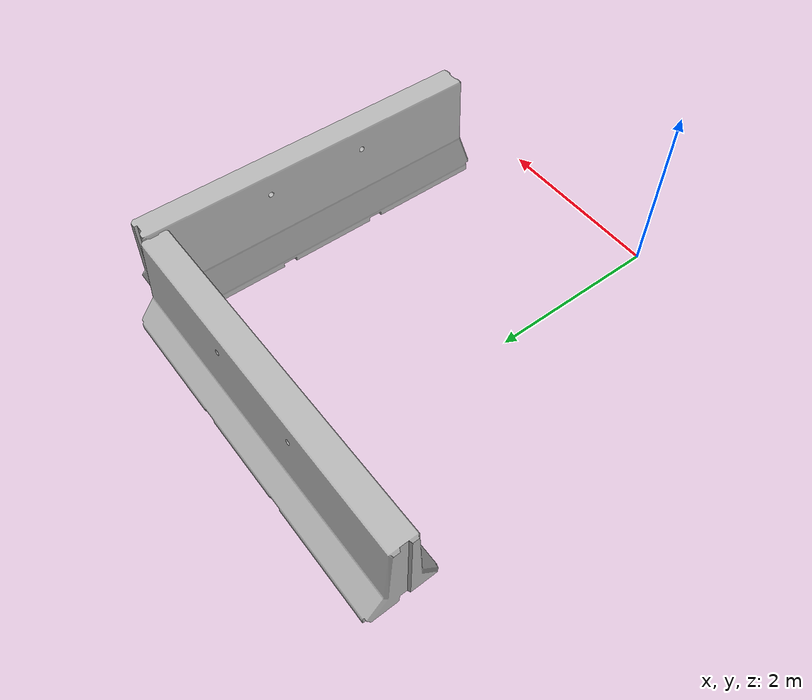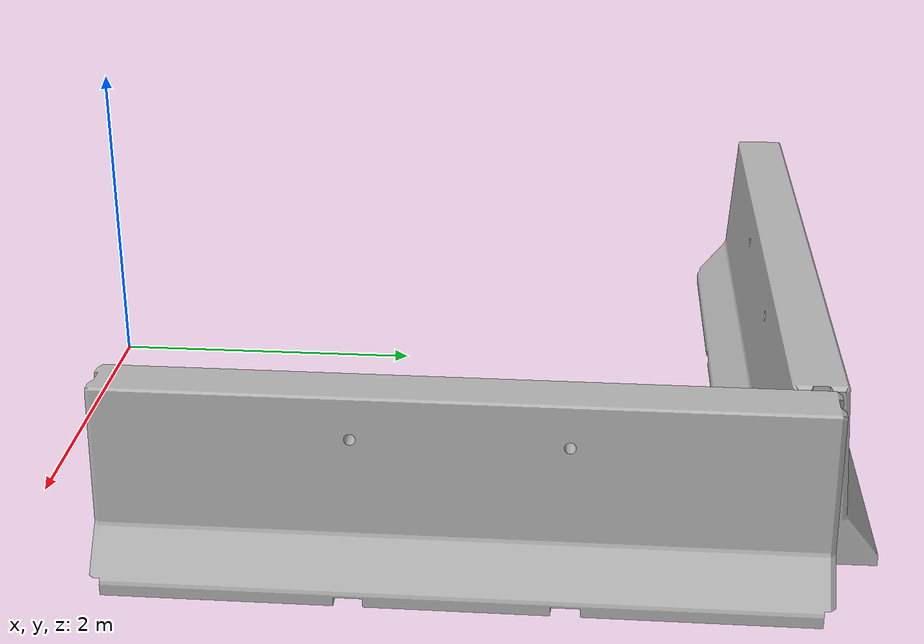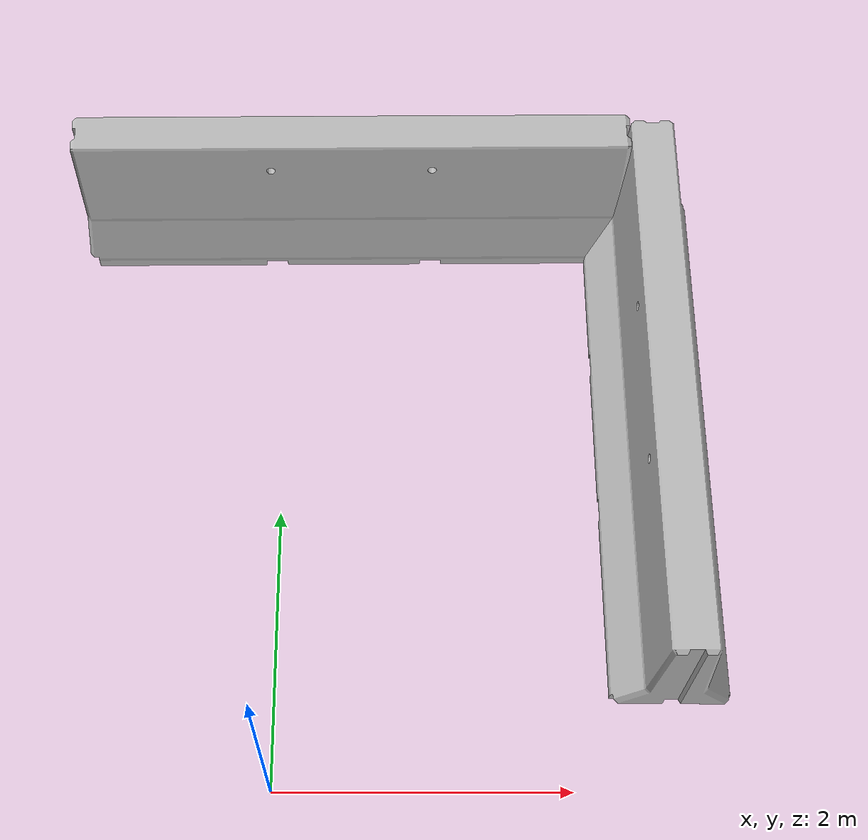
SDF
<sdf version="1.6">
 <world name="default">
  <model name="jersey_barrier_clone_0">
   <static>1</static>
   <link name="link">
    <visual name="visual">
     <geometry>
      <mesh><uri>model://jersey_barrier/meshes/jersey_barrier.dae</uri><scale>1 1 1</scale></mesh>
     </geometry>
    </visual>
    <collision name="upright">
     <pose>0 0 0.5715 0 -0 0</pose>
     <geometry><box><size>4.06542 0.3063 1.143</size></box></geometry>
    </collision>
    <collision name="base">
     <pose>0 0 0.032258 0 -0 0</pose>
     <geometry><box><size>4.06542 0.8107 0.064516</size></box></geometry>
    </collision>
    <collision name="base2">
     <pose>0 0 0.1 0 -0 0</pose>
     <geometry><box><size>4.06542 0.65 0.1</size></box></geometry>
    </collision>
    <collision name="base3">
     <pose>0 0 0.2 0 -0 0</pose>
     <geometry><box><size>4.06542 0.5 0.1</size></box></geometry>
    </collision>
    <collision name="left-angle">
     <pose>0 -0.224 0.2401 0.9 -0 0</pose>
     <geometry><box><size>4.06542 0.5 0.064516</size></box></geometry>
    </collision>
    <collision name="right-angle">
     <pose>0 0.224 0.2401 -0.9 0 0</pose>
     <geometry><box><size>4.06542 0.5 0.064516</size></box></geometry>
    </collision>
    <velocity_decay><linear>0</linear><angular>0</angular></velocity_decay>
   </link>
   <pose>0.49111 4.52266 0 0 -0 0.009076</pose>
  </model>
  <model name="jersey_barrier_clone_clone">
   <static>1</static>
   <link name="link">
    <visual name="visual">
     <geometry>
      <mesh><uri>model://jersey_barrier/meshes/jersey_barrier.dae</uri><scale>1 1 1</scale></mesh>
     </geometry>
    </visual>
    <collision name="upright">
     <pose>0 0 0.5715 0 -0 0</pose>
     <geometry><box><size>4.06542 0.3063 1.143</size></box></geometry>
    </collision>
    <collision name="base">
     <pose>0 0 0.032258 0 -0 0</pose>
     <geometry><box><size>4.06542 0.8107 0.064516</size></box></geometry>
    </collision>
    <collision name="base2">
     <pose>0 0 0.1 0 -0 0</pose>
     <geometry><box><size>4.06542 0.65 0.1</size></box></geometry>
    </collision>
    <collision name="base3">
     <pose>0 0 0.2 0 -0 0</pose>
     <geometry><box><size>4.06542 0.5 0.1</size></box></geometry>
    </collision>
    <collision name="left-angle">
     <pose>0 -0.224 0.2401 0.9 -0 0</pose>
     <geometry><box><size>4.06542 0.5 0.064516</size></box></geometry>
    </collision>
    <collision name="right-angle">
     <pose>0 0.224 0.2401 -0.9 0 0</pose>
     <geometry><box><size>4.06542 0.5 0.064516</size></box></geometry>
    </collision>
    <velocity_decay><linear>0</linear><angular>0</angular></velocity_decay>
   </link>
   <pose>2.68221 2.61062 0 0 0 -1.57346</pose>
  </model>
 </world>
</sdf>
